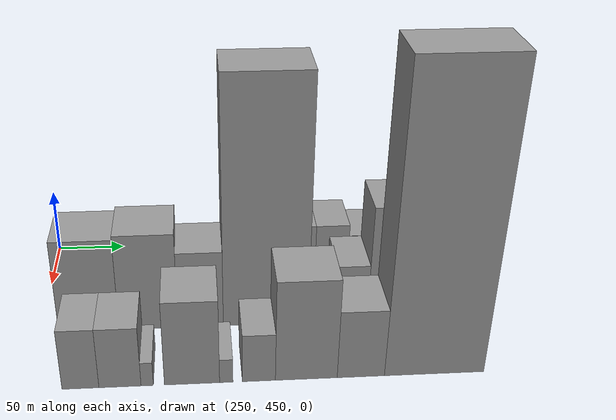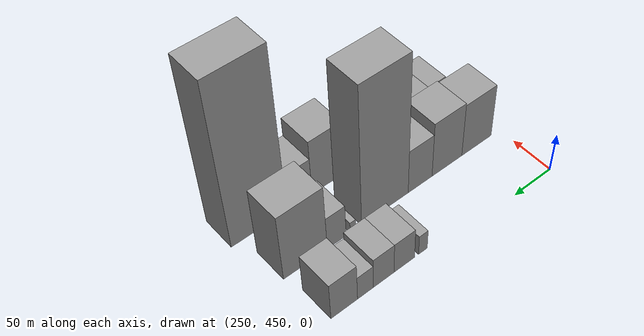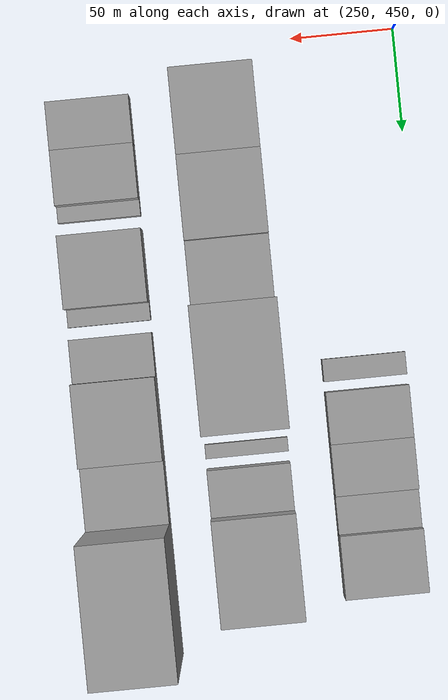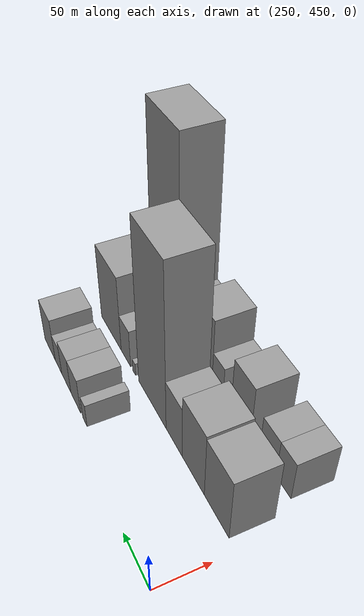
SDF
<sdf version="1.6">
 <world name="default">
  <model name="building_209">
   <static>1</static>
   <pose>280.0000 611.5061 0 0.000000 0.000000 0.000000</pose>
   <link name="link">
    <pose>0 0 13.50 0 0 0</pose>
    <collision name="collision"><geometry><box><size>40.0000 10.8360 27.0000</size></box></geometry></collision>
    <visual name="visual">
     <cast_shadows>0</cast_shadows>
     <geometry><box><size>40.0000 10.8360 27.0000</size></box></geometry>
     <material>
      <script>
       <uri>model://grey_wall/materials/scripts</uri>
       <uri>model://grey_wall/materials/textures</uri>
       <name>vrc/grey_wall</name>
      </script>
     </material>
    </visual>
   </link>
  </model>
  <model name="building_210">
   <static>1</static>
   <pose>280.0000 634.4693 0 0.000000 0.000000 0.000000</pose>
   <link name="link">
    <pose>0 0 21.00 0 0 0</pose>
    <collision name="collision"><geometry><box><size>40.0000 25.0905 42.0000</size></box></geometry></collision>
    <visual name="visual">
     <cast_shadows>0</cast_shadows>
     <geometry><box><size>40.0000 25.0905 42.0000</size></box></geometry>
     <material>
      <script>
       <uri>model://grey_wall/materials/scripts</uri>
       <uri>model://grey_wall/materials/textures</uri>
       <name>vrc/grey_wall</name>
      </script>
     </material>
    </visual>
   </link>
  </model>
  <model name="building_211">
   <static>1</static>
   <pose>280.0000 659.4440 0 0.000000 0.000000 0.000000</pose>
   <link name="link">
    <pose>0 0 21.00 0 0 0</pose>
    <collision name="collision"><geometry><box><size>40.0000 24.8589 42.0000</size></box></geometry></collision>
    <visual name="visual">
     <cast_shadows>0</cast_shadows>
     <geometry><box><size>40.0000 24.8589 42.0000</size></box></geometry>
     <material>
      <script>
       <uri>model://grey_wall/materials/scripts</uri>
       <uri>model://grey_wall/materials/textures</uri>
       <name>vrc/grey_wall</name>
      </script>
     </material>
    </visual>
   </link>
  </model>
  <model name="building_212">
   <static>1</static>
   <pose>280.0000 681.1554 0 0.000000 0.000000 0.000000</pose>
   <link name="link">
    <pose>0 0 16.50 0 0 0</pose>
    <collision name="collision"><geometry><box><size>40.0000 18.5639 33.0000</size></box></geometry></collision>
    <visual name="visual">
     <cast_shadows>0</cast_shadows>
     <geometry><box><size>40.0000 18.5639 33.0000</size></box></geometry>
     <material>
      <script>
       <uri>model://grey_wall/materials/scripts</uri>
       <uri>model://grey_wall/materials/textures</uri>
       <name>vrc/grey_wall</name>
      </script>
     </material>
    </visual>
   </link>
  </model>
  <model name="building_213">
   <static>1</static>
   <pose>280.0000 705.6825 0 0.000000 0.000000 0.000000</pose>
   <link name="link">
    <pose>0 0 25.50 0 0 0</pose>
    <collision name="collision"><geometry><box><size>40.0000 30.4902 51.0000</size></box></geometry></collision>
    <visual name="visual">
     <cast_shadows>0</cast_shadows>
     <geometry><box><size>40.0000 30.4902 51.0000</size></box></geometry>
     <material>
      <script>
       <uri>model://grey_wall/materials/scripts</uri>
       <uri>model://grey_wall/materials/textures</uri>
       <name>vrc/grey_wall</name>
      </script>
     </material>
    </visual>
   </link>
  </model>
  <model name="building_259">
   <static>1</static>
   <pose>340.0000 482.7915 0 0.000000 0.000000 0.000000</pose>
   <link name="link">
    <pose>0 0 36.00 0 0 0</pose>
    <collision name="collision"><geometry><box><size>40.0000 41.3374 72.0000</size></box></geometry></collision>
    <visual name="visual">
     <cast_shadows>0</cast_shadows>
     <geometry><box><size>40.0000 41.3374 72.0000</size></box></geometry>
     <material>
      <script>
       <uri>model://grey_wall/materials/scripts</uri>
       <uri>model://grey_wall/materials/textures</uri>
       <name>vrc/grey_wall</name>
      </script>
     </material>
    </visual>
   </link>
  </model>
  <model name="building_260">
   <static>1</static>
   <pose>340.0000 523.7398 0 0.000000 0.000000 0.000000</pose>
   <link name="link">
    <pose>0 0 37.50 0 0 0</pose>
    <collision name="collision"><geometry><box><size>40.0000 40.5592 75.0000</size></box></geometry></collision>
    <visual name="visual">
     <cast_shadows>0</cast_shadows>
     <geometry><box><size>40.0000 40.5592 75.0000</size></box></geometry>
     <material>
      <script>
       <uri>model://grey_wall/materials/scripts</uri>
       <uri>model://grey_wall/materials/textures</uri>
       <name>vrc/grey_wall</name>
      </script>
     </material>
    </visual>
   </link>
  </model>
  <model name="building_261">
   <static>1</static>
   <pose>340.0000 559.7546 0 0.000000 0.000000 0.000000</pose>
   <link name="link">
    <pose>0 0 30.00 0 0 0</pose>
    <collision name="collision"><geometry><box><size>40.0000 31.4705 60.0000</size></box></geometry></collision>
    <visual name="visual">
     <cast_shadows>0</cast_shadows>
     <geometry><box><size>40.0000 31.4705 60.0000</size></box></geometry>
     <material>
      <script>
       <uri>model://grey_wall/materials/scripts</uri>
       <uri>model://grey_wall/materials/textures</uri>
       <name>vrc/grey_wall</name>
      </script>
     </material>
    </visual>
   </link>
  </model>
  <model name="building_262">
   <static>1</static>
   <pose>340.0000 605.0865 0 0.000000 0.000000 0.000000</pose>
   <link name="link">
    <pose>0 0 93.00 0 0 0</pose>
    <collision name="collision"><geometry><box><size>40.0000 59.1932 186.0000</size></box></geometry></collision>
    <visual name="visual">
     <cast_shadows>0</cast_shadows>
     <geometry><box><size>40.0000 59.1932 186.0000</size></box></geometry>
     <material>
      <script>
       <uri>model://grey_wall/materials/scripts</uri>
       <uri>model://grey_wall/materials/textures</uri>
       <name>vrc/grey_wall</name>
      </script>
     </material>
    </visual>
   </link>
  </model>
  <model name="building_263">
   <static>1</static>
   <pose>340.0000 645.1104 0 0.000000 0.000000 0.000000</pose>
   <link name="link">
    <pose>0 0 7.50 0 0 0</pose>
    <collision name="collision"><geometry><box><size>40.0000 6.8544 15.0000</size></box></geometry></collision>
    <visual name="visual">
     <cast_shadows>0</cast_shadows>
     <geometry><box><size>40.0000 6.8544 15.0000</size></box></geometry>
     <material>
      <script>
       <uri>model://grey_wall/materials/scripts</uri>
       <uri>model://grey_wall/materials/textures</uri>
       <name>vrc/grey_wall</name>
      </script>
     </material>
    </visual>
   </link>
  </model>
  <model name="building_264">
   <static>1</static>
   <pose>340.0000 664.8765 0 0.000000 0.000000 0.000000</pose>
   <link name="link">
    <pose>0 0 22.50 0 0 0</pose>
    <collision name="collision"><geometry><box><size>40.0000 22.6779 45.0000</size></box></geometry></collision>
    <visual name="visual">
     <cast_shadows>0</cast_shadows>
     <geometry><box><size>40.0000 22.6779 45.0000</size></box></geometry>
     <material>
      <script>
       <uri>model://grey_wall/materials/scripts</uri>
       <uri>model://grey_wall/materials/textures</uri>
       <name>vrc/grey_wall</name>
      </script>
     </material>
    </visual>
   </link>
  </model>
  <model name="building_265">
   <static>1</static>
   <pose>340.0000 701.6146 0 0.000000 0.000000 0.000000</pose>
   <link name="link">
    <pose>0 0 45.00 0 0 0</pose>
    <collision name="collision"><geometry><box><size>40.0000 50.7983 90.0000</size></box></geometry></collision>
    <visual name="visual">
     <cast_shadows>0</cast_shadows>
     <geometry><box><size>40.0000 50.7983 90.0000</size></box></geometry>
     <material>
      <script>
       <uri>model://grey_wall/materials/scripts</uri>
       <uri>model://grey_wall/materials/textures</uri>
       <name>vrc/grey_wall</name>
      </script>
     </material>
    </visual>
   </link>
  </model>
  <model name="building_312">
   <static>1</static>
   <pose>400.0000 482.9939 0 0.000000 0.000000 0.000000</pose>
   <link name="link">
    <pose>0 0 22.50 0 0 0</pose>
    <collision name="collision"><geometry><box><size>40.0000 23.1240 45.0000</size></box></geometry></collision>
    <visual name="visual">
     <cast_shadows>0</cast_shadows>
     <geometry><box><size>40.0000 23.1240 45.0000</size></box></geometry>
     <material>
      <script>
       <uri>model://grey_wall/materials/scripts</uri>
       <uri>model://grey_wall/materials/textures</uri>
       <name>vrc/grey_wall</name>
      </script>
     </material>
    </visual>
   </link>
  </model>
  <model name="building_313">
   <static>1</static>
   <pose>400.0000 507.8043 0 0.000000 0.000000 0.000000</pose>
   <link name="link">
    <pose>0 0 22.50 0 0 0</pose>
    <collision name="collision"><geometry><box><size>40.0000 26.4968 45.0000</size></box></geometry></collision>
    <visual name="visual">
     <cast_shadows>0</cast_shadows>
     <geometry><box><size>40.0000 26.4968 45.0000</size></box></geometry>
     <material>
      <script>
       <uri>model://grey_wall/materials/scripts</uri>
       <uri>model://grey_wall/materials/textures</uri>
       <name>vrc/grey_wall</name>
      </script>
     </material>
    </visual>
   </link>
  </model>
  <model name="building_314">
   <static>1</static>
   <pose>400.0000 524.9414 0 0.000000 0.000000 0.000000</pose>
   <link name="link">
    <pose>0 0 9.00 0 0 0</pose>
    <collision name="collision"><geometry><box><size>40.0000 7.7774 18.0000</size></box></geometry></collision>
    <visual name="visual">
     <cast_shadows>0</cast_shadows>
     <geometry><box><size>40.0000 7.7774 18.0000</size></box></geometry>
     <material>
      <script>
       <uri>model://grey_wall/materials/scripts</uri>
       <uri>model://grey_wall/materials/textures</uri>
       <name>vrc/grey_wall</name>
      </script>
     </material>
    </visual>
   </link>
  </model>
  <model name="building_315">
   <static>1</static>
   <pose>400.0000 553.3213 0 0.000000 0.000000 0.000000</pose>
   <link name="link">
    <pose>0 0 31.50 0 0 0</pose>
    <collision name="collision"><geometry><box><size>40.0000 34.9825 63.0000</size></box></geometry></collision>
    <visual name="visual">
     <cast_shadows>0</cast_shadows>
     <geometry><box><size>40.0000 34.9825 63.0000</size></box></geometry>
     <material>
      <script>
       <uri>model://grey_wall/materials/scripts</uri>
       <uri>model://grey_wall/materials/textures</uri>
       <name>vrc/grey_wall</name>
      </script>
     </material>
    </visual>
   </link>
  </model>
  <model name="building_316">
   <static>1</static>
   <pose>400.0000 575.0845 0 0.000000 0.000000 0.000000</pose>
   <link name="link">
    <pose>0 0 9.00 0 0 0</pose>
    <collision name="collision"><geometry><box><size>40.0000 8.5438 18.0000</size></box></geometry></collision>
    <visual name="visual">
     <cast_shadows>0</cast_shadows>
     <geometry><box><size>40.0000 8.5438 18.0000</size></box></geometry>
     <material>
      <script>
       <uri>model://grey_wall/materials/scripts</uri>
       <uri>model://grey_wall/materials/textures</uri>
       <name>vrc/grey_wall</name>
      </script>
     </material>
    </visual>
   </link>
  </model>
  <model name="building_317">
   <static>1</static>
   <pose>400.0000 595.9136 0 0.000000 0.000000 0.000000</pose>
   <link name="link">
    <pose>0 0 18.00 0 0 0</pose>
    <collision name="collision"><geometry><box><size>40.0000 21.1144 36.0000</size></box></geometry></collision>
    <visual name="visual">
     <cast_shadows>0</cast_shadows>
     <geometry><box><size>40.0000 21.1144 36.0000</size></box></geometry>
     <material>
      <script>
       <uri>model://grey_wall/materials/scripts</uri>
       <uri>model://grey_wall/materials/textures</uri>
       <name>vrc/grey_wall</name>
      </script>
     </material>
    </visual>
   </link>
  </model>
  <model name="building_318">
   <static>1</static>
   <pose>400.0000 626.3579 0 0.000000 0.000000 0.000000</pose>
   <link name="link">
    <pose>0 0 37.50 0 0 0</pose>
    <collision name="collision"><geometry><box><size>40.0000 39.7743 75.0000</size></box></geometry></collision>
    <visual name="visual">
     <cast_shadows>0</cast_shadows>
     <geometry><box><size>40.0000 39.7743 75.0000</size></box></geometry>
     <material>
      <script>
       <uri>model://grey_wall/materials/scripts</uri>
       <uri>model://grey_wall/materials/textures</uri>
       <name>vrc/grey_wall</name>
      </script>
     </material>
    </visual>
   </link>
  </model>
  <model name="building_319">
   <static>1</static>
   <pose>400.0000 661.5425 0 0.000000 0.000000 0.000000</pose>
   <link name="link">
    <pose>0 0 25.50 0 0 0</pose>
    <collision name="collision"><geometry><box><size>40.0000 30.5948 51.0000</size></box></geometry></collision>
    <visual name="visual">
     <cast_shadows>0</cast_shadows>
     <geometry><box><size>40.0000 30.5948 51.0000</size></box></geometry>
     <material>
      <script>
       <uri>model://grey_wall/materials/scripts</uri>
       <uri>model://grey_wall/materials/textures</uri>
       <name>vrc/grey_wall</name>
      </script>
     </material>
    </visual>
   </link>
  </model>
  <model name="building_320">
   <static>1</static>
   <pose>400.0000 709.3057 0 0.000000 0.000000 0.000000</pose>
   <link name="link">
    <pose>0 0 108.00 0 0 0</pose>
    <collision name="collision"><geometry><box><size>40.0000 64.9316 216.0000</size></box></geometry></collision>
    <visual name="visual">
     <cast_shadows>0</cast_shadows>
     <geometry><box><size>40.0000 64.9316 216.0000</size></box></geometry>
     <material>
      <script>
       <uri>model://grey_wall/materials/scripts</uri>
       <uri>model://grey_wall/materials/textures</uri>
       <name>vrc/grey_wall</name>
      </script>
     </material>
    </visual>
   </link>
  </model>
 </world>
</sdf>
